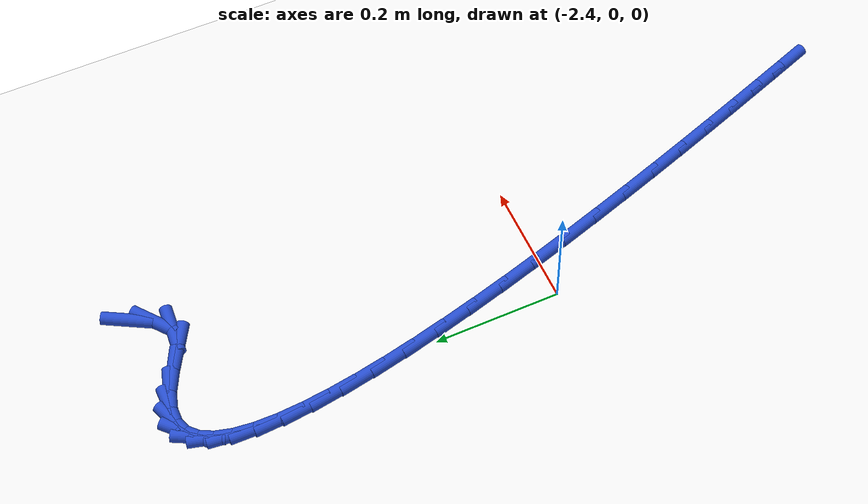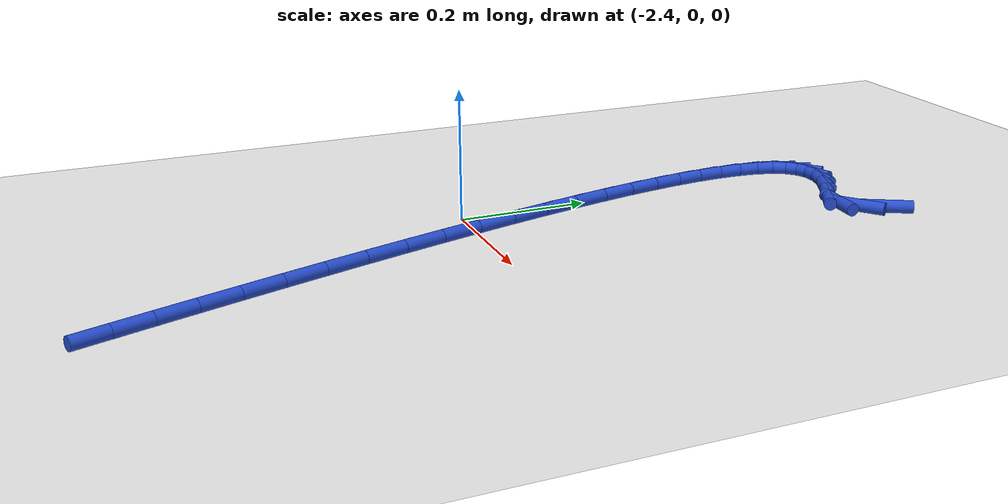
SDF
<sdf version="1.6">
 <world name="default">
  <model name="ground_plane">
   <static>1</static>
   <link name="link">
    <collision name="collision">
     <geometry><plane><normal>0 0 1</normal><size>100 100</size></plane></geometry>
     <surface><friction><ode><mu>100</mu><mu2>50</mu2></ode></friction></surface>
    </collision>
    <visual name="visual">
     <cast_shadows>0</cast_shadows>
     <geometry><plane><normal>0 0 1</normal><size>100 100</size></plane></geometry>
     <material>
      <script><uri>file://media/materials/scripts/gazebo.material</uri><name>Gazebo/WhiteGlow</name></script>
     </material>
    </visual>
   </link>
  </model>
  <model name="line">
   <link name="link_79">
    <pose>-2.176006348635419 0.6055147744611202 0.01 0 1.57 1.055444475067602</pose>
    <collision name="collision">
     <geometry><cylinder><radius>0.01</radius><length>0.08</length></cylinder></geometry>
    </collision>
    <visual name="visual">
     <material>
      <script><name>Gazebo/Blue</name><uri>file://media/materials/scripts/gazebo.material</uri></script>
     </material>
     <geometry><cylinder><radius>0.01</radius><length>0.08</length></cylinder></geometry>
    </visual>
   </link>
   <link name="link_80">
    <pose>-2.196094182939382 0.570049355474075 0.01 0 1.57 0.6645884004642433</pose>
    <collision name="collision">
     <geometry><cylinder><radius>0.01</radius><length>0.08</length></cylinder></geometry>
    </collision>
    <visual name="visual">
     <material>
      <script><name>Gazebo/Blue</name><uri>file://media/materials/scripts/gazebo.material</uri></script>
     </material>
     <geometry><cylinder><radius>0.01</radius><length>0.08</length></cylinder></geometry>
    </visual>
   </link>
   <link name="link_81">
    <pose>-2.2207490291085956 0.5507326924674331 0.01 0 1.57 -0.06457929460538185</pose>
    <collision name="collision">
     <geometry><cylinder><radius>0.01</radius><length>0.08</length></cylinder></geometry>
    </collision>
    <visual name="visual">
     <material>
      <script><name>Gazebo/Blue</name><uri>file://media/materials/scripts/gazebo.material</uri></script>
     </material>
     <geometry><cylinder><radius>0.01</radius><length>0.08</length></cylinder></geometry>
    </visual>
   </link>
   <link name="link_82">
    <pose>-2.251540716907874 0.5527239669087626 0.01 0 1.57 -0.5212176723333364</pose>
    <collision name="collision">
     <geometry><cylinder><radius>0.01</radius><length>0.08</length></cylinder></geometry>
    </collision>
    <visual name="visual">
     <material>
      <script><name>Gazebo/Blue</name><uri>file://media/materials/scripts/gazebo.material</uri></script>
     </material>
     <geometry><cylinder><radius>0.01</radius><length>0.08</length></cylinder></geometry>
    </visual>
   </link>
   <link name="link_83">
    <pose>-2.2872107349214366 0.5732049713370797 0.01 0 1.57 -0.45755475171365434</pose>
    <collision name="collision">
     <geometry><cylinder><radius>0.01</radius><length>0.08</length></cylinder></geometry>
    </collision>
    <visual name="visual">
     <material>
      <script><name>Gazebo/Blue</name><uri>file://media/materials/scripts/gazebo.material</uri></script>
     </material>
     <geometry><cylinder><radius>0.01</radius><length>0.08</length></cylinder></geometry>
    </visual>
   </link>
   <link name="link_84">
    <pose>-2.3193869982682496 0.5890487875511012 0.01 0 1.57 -0.2726657144193193</pose>
    <collision name="collision">
     <geometry><cylinder><radius>0.01</radius><length>0.08</length></cylinder></geometry>
    </collision>
    <visual name="visual">
     <material>
      <script><name>Gazebo/Blue</name><uri>file://media/materials/scripts/gazebo.material</uri></script>
     </material>
     <geometry><cylinder><radius>0.01</radius><length>0.08</length></cylinder></geometry>
    </visual>
   </link>
   <link name="link_85">
    <pose>-2.346854416713557 0.5967295060703051 0.01 0 1.57 0.0012909783658579485</pose>
    <collision name="collision">
     <geometry><cylinder><radius>0.01</radius><length>0.08</length></cylinder></geometry>
    </collision>
    <visual name="visual">
     <material>
      <script><name>Gazebo/Blue</name><uri>file://media/materials/scripts/gazebo.material</uri></script>
     </material>
     <geometry><cylinder><radius>0.01</radius><length>0.08</length></cylinder></geometry>
    </visual>
   </link>
   <link name="link_86">
    <pose>-2.369838490430835 0.5966998341118928 0.01 0 1.57 0.3711200791959185</pose>
    <collision name="collision">
     <geometry><cylinder><radius>0.01</radius><length>0.08</length></cylinder></geometry>
    </collision>
    <visual name="visual">
     <material>
      <script><name>Gazebo/Blue</name><uri>file://media/materials/scripts/gazebo.material</uri></script>
     </material>
     <geometry><cylinder><radius>0.01</radius><length>0.08</length></cylinder></geometry>
    </visual>
   </link>
   <link name="link_87">
    <pose>-2.3885647195935666 0.5894124788930666 0.01 0 1.57 0.7645039278968464</pose>
    <collision name="collision">
     <geometry><cylinder><radius>0.01</radius><length>0.08</length></cylinder></geometry>
    </collision>
    <visual name="visual">
     <material>
      <script><name>Gazebo/Blue</name><uri>file://media/materials/scripts/gazebo.material</uri></script>
     </material>
     <geometry><cylinder><radius>0.01</radius><length>0.08</length></cylinder></geometry>
    </visual>
   </link>
   <link name="link_88">
    <pose>-2.40325860437523 0.5753201476310278 0.01 0 1.57 1.0814769237981379</pose>
    <collision name="collision">
     <geometry><cylinder><radius>0.01</radius><length>0.08</length></cylinder></geometry>
    </collision>
    <visual name="visual">
     <material>
      <script><name>Gazebo/Blue</name><uri>file://media/materials/scripts/gazebo.material</uri></script>
     </material>
     <geometry><cylinder><radius>0.01</radius><length>0.08</length></cylinder></geometry>
    </visual>
   </link>
   <link name="link_89">
    <pose>-2.4141456449493055 0.5548755475429784 0.01 0 1.57 1.3002768521249777</pose>
    <collision name="collision">
     <geometry><cylinder><radius>0.01</radius><length>0.08</length></cylinder></geometry>
    </collision>
    <visual name="visual">
     <material>
      <script><name>Gazebo/Blue</name><uri>file://media/materials/scripts/gazebo.material</uri></script>
     </material>
     <geometry><cylinder><radius>0.01</radius><length>0.08</length></cylinder></geometry>
    </visual>
   </link>
   <link name="link_90">
    <pose>-2.4214513414892718 0.5285313858461207 0.01 0 1.57 1.4471854708589897</pose>
    <collision name="collision">
     <geometry><cylinder><radius>0.01</radius><length>0.08</length></cylinder></geometry>
    </collision>
    <visual name="visual">
     <material>
      <script><name>Gazebo/Blue</name><uri>file://media/materials/scripts/gazebo.material</uri></script>
     </material>
     <geometry><cylinder><radius>0.01</radius><length>0.08</length></cylinder></geometry>
    </visual>
   </link>
   <link name="link_91">
    <pose>-2.42540119416861 0.49674036975765573 0.01 0 1.57 1.5485217633511086</pose>
    <collision name="collision">
     <geometry><cylinder><radius>0.01</radius><length>0.08</length></cylinder></geometry>
    </collision>
    <visual name="visual">
     <material>
      <script><name>Gazebo/Blue</name><uri>file://media/materials/scripts/gazebo.material</uri></script>
     </material>
     <geometry><cylinder><radius>0.01</radius><length>0.08</length></cylinder></geometry>
    </visual>
   </link>
   <link name="link_92">
    <pose>-2.4262207031607983 0.4599552064947855 0.01 0 1.57 -1.5203792306119441</pose>
    <collision name="collision">
     <geometry><cylinder><radius>0.01</radius><length>0.08</length></cylinder></geometry>
    </collision>
    <visual name="visual">
     <material>
      <script><name>Gazebo/Blue</name><uri>file://media/materials/scripts/gazebo.material</uri></script>
     </material>
     <geometry><cylinder><radius>0.01</radius><length>0.08</length></cylinder></geometry>
    </visual>
   </link>
   <link name="link_93">
    <pose>-2.4241353686393174 0.41862860327471263 0.01 0 1.57 -1.4662653135142485</pose>
    <collision name="collision">
     <geometry><cylinder><radius>0.01</radius><length>0.08</length></cylinder></geometry>
    </collision>
    <visual name="visual">
     <material>
      <script><name>Gazebo/Blue</name><uri>file://media/materials/scripts/gazebo.material</uri></script>
     </material>
     <geometry><cylinder><radius>0.01</radius><length>0.08</length></cylinder></geometry>
    </visual>
   </link>
   <link name="link_94">
    <pose>-2.419370690777646 0.3732132673146377 0.01 0 1.57 -1.4246825879222087</pose>
    <collision name="collision">
     <geometry><cylinder><radius>0.01</radius><length>0.08</length></cylinder></geometry>
    </collision>
    <visual name="visual">
     <material>
      <script><name>Gazebo/Blue</name><uri>file://media/materials/scripts/gazebo.material</uri></script>
     </material>
     <geometry><cylinder><radius>0.01</radius><length>0.08</length></cylinder></geometry>
    </visual>
   </link>
   <link name="link_95">
    <pose>-2.412152169749265 0.324161905831763 0.01 0 1.57 -1.3918760676383977</pose>
    <collision name="collision">
     <geometry><cylinder><radius>0.01</radius><length>0.08</length></cylinder></geometry>
    </collision>
    <visual name="visual">
     <material>
      <script><name>Gazebo/Blue</name><uri>file://media/materials/scripts/gazebo.material</uri></script>
     </material>
     <geometry><cylinder><radius>0.01</radius><length>0.08</length></cylinder></geometry>
    </visual>
   </link>
   <link name="link_96">
    <pose>-2.402705305727653 0.27192722604329045 0.01 0 1.57 -1.3654252690597473</pose>
    <collision name="collision">
     <geometry><cylinder><radius>0.01</radius><length>0.08</length></cylinder></geometry>
    </collision>
    <visual name="visual">
     <material>
      <script><name>Gazebo/Blue</name><uri>file://media/materials/scripts/gazebo.material</uri></script>
     </material>
     <geometry><cylinder><radius>0.01</radius><length>0.08</length></cylinder></geometry>
    </visual>
   </link>
   <link name="link_97">
    <pose>-2.391255598886291 0.21696193516642182 0.01 0 1.57 -1.3437141832600041</pose>
    <collision name="collision">
     <geometry><cylinder><radius>0.01</radius><length>0.08</length></cylinder></geometry>
    </collision>
    <visual name="visual">
     <material>
      <script><name>Gazebo/Blue</name><uri>file://media/materials/scripts/gazebo.material</uri></script>
     </material>
     <geometry><cylinder><radius>0.01</radius><length>0.08</length></cylinder></geometry>
    </visual>
   </link>
   <link name="link_98">
    <pose>-2.378028549398657 0.15971874041836 0.01 0 1.57 -1.3256297490005275</pose>
    <collision name="collision">
     <geometry><cylinder><radius>0.01</radius><length>0.08</length></cylinder></geometry>
    </collision>
    <visual name="visual">
     <material>
      <script><name>Gazebo/Blue</name><uri>file://media/materials/scripts/gazebo.material</uri></script>
     </material>
     <geometry><cylinder><radius>0.01</radius><length>0.08</length></cylinder></geometry>
    </visual>
   </link>
   <link name="link_99">
    <pose>-2.3632496574382316 0.10065034901630457 0.01 0 1.57 -1.3103844633180357</pose>
    <collision name="collision">
     <geometry><cylinder><radius>0.01</radius><length>0.08</length></cylinder></geometry>
    </collision>
    <visual name="visual">
     <material>
      <script><name>Gazebo/Blue</name><uri>file://media/materials/scripts/gazebo.material</uri></script>
     </material>
     <geometry><cylinder><radius>0.01</radius><length>0.08</length></cylinder></geometry>
    </visual>
   </link>
   <link name="link_100">
    <pose>-2.3471444231784955 0.04020946817745842 0.01 0 1.57 -1.29740848577971</pose>
    <collision name="collision">
     <geometry><cylinder><radius>0.01</radius><length>0.08</length></cylinder></geometry>
    </collision>
    <visual name="visual">
     <material>
      <script><name>Gazebo/Blue</name><uri>file://media/materials/scripts/gazebo.material</uri></script>
     </material>
     <geometry><cylinder><radius>0.01</radius><length>0.08</length></cylinder></geometry>
    </visual>
   </link>
   <link name="link_101">
    <pose>-2.3299383467929253 -0.021151194880976498 0.01 0 1.57 -1.28628199415528</pose>
    <collision name="collision">
     <geometry><cylinder><radius>0.01</radius><length>0.08</length></cylinder></geometry>
    </collision>
    <visual name="visual">
     <material>
      <script><name>Gazebo/Blue</name><uri>file://media/materials/scripts/gazebo.material</uri></script>
     </material>
     <geometry><cylinder><radius>0.01</radius><length>0.08</length></cylinder></geometry>
    </visual>
   </link>
   <link name="link_102">
    <pose>-2.3118569284550032 -0.08297893294179859 0.01 0 1.57 -1.2766916814952793</pose>
    <collision name="collision">
     <geometry><cylinder><radius>0.01</radius><length>0.08</length></cylinder></geometry>
    </collision>
    <visual name="visual">
     <material>
      <script><name>Gazebo/Blue</name><uri>file://media/materials/scripts/gazebo.material</uri></script>
     </material>
     <geometry><cylinder><radius>0.01</radius><length>0.08</length></cylinder></geometry>
    </visual>
   </link>
   <link name="link_103">
    <pose>-2.2931256683382086 -0.14482103878780597 0.01 0 1.57 -1.2684022631766925</pose>
    <collision name="collision">
     <geometry><cylinder><radius>0.01</radius><length>0.08</length></cylinder></geometry>
    </collision>
    <visual name="visual">
     <material>
      <script><name>Gazebo/Blue</name><uri>file://media/materials/scripts/gazebo.material</uri></script>
     </material>
     <geometry><cylinder><radius>0.01</radius><length>0.08</length></cylinder></geometry>
    </visual>
   </link>
   <link name="link_104">
    <pose>-2.2739700666160205 -0.2062248052017967 0.01 0 1.57 -1.2612377043543097</pose>
    <collision name="collision">
     <geometry><cylinder><radius>0.01</radius><length>0.08</length></cylinder></geometry>
    </collision>
    <visual name="visual">
     <material>
      <script><name>Gazebo/Blue</name><uri>file://media/materials/scripts/gazebo.material</uri></script>
     </material>
     <geometry><cylinder><radius>0.01</radius><length>0.08</length></cylinder></geometry>
    </visual>
   </link>
   <link name="link_105">
    <pose>-2.25461562346192 -0.26673752496656794 0.01 0 1.57 -1.2550690926274668</pose>
    <collision name="collision">
     <geometry><cylinder><radius>0.01</radius><length>0.08</length></cylinder></geometry>
    </collision>
    <visual name="visual">
     <material>
      <script><name>Gazebo/Blue</name><uri>file://media/materials/scripts/gazebo.material</uri></script>
     </material>
     <geometry><cylinder><radius>0.01</radius><length>0.08</length></cylinder></geometry>
    </visual>
   </link>
   <link name="link_106">
    <pose>-2.2352878390493847 -0.32590649086492013 0.01 0 1.57 -1.2498074539844395</pose>
    <collision name="collision">
     <geometry><cylinder><radius>0.01</radius><length>0.08</length></cylinder></geometry>
    </collision>
    <visual name="visual">
     <material>
      <script><name>Gazebo/Blue</name><uri>file://media/materials/scripts/gazebo.material</uri></script>
     </material>
     <geometry><cylinder><radius>0.01</radius><length>0.08</length></cylinder></geometry>
    </visual>
   </link>
   <link name="link_107">
    <pose>-2.216212213551895 -0.3832789956796504 0.01 0 1.57 -1.2454007915811116</pose>
    <collision name="collision">
     <geometry><cylinder><radius>0.01</radius><length>0.08</length></cylinder></geometry>
    </collision>
    <visual name="visual">
     <material>
      <script><name>Gazebo/Blue</name><uri>file://media/materials/scripts/gazebo.material</uri></script>
     </material>
     <geometry><cylinder><radius>0.01</radius><length>0.08</length></cylinder></geometry>
    </visual>
   </link>
   <link name="link_108">
    <pose>-2.197614247142931 -0.438402332193557 0.01 0 1.57 -1.241835539478623</pose>
    <collision name="collision">
     <geometry><cylinder><radius>0.01</radius><length>0.08</length></cylinder></geometry>
    </collision>
    <visual name="visual">
     <material>
      <script><name>Gazebo/Blue</name><uri>file://media/materials/scripts/gazebo.material</uri></script>
     </material>
     <geometry><cylinder><radius>0.01</radius><length>0.08</length></cylinder></geometry>
    </visual>
   </link>
   <link name="link_109">
    <pose>-2.1797194399959725 -0.49082379318943803 0.01 0 1.57 -1.2391438278159606</pose>
    <collision name="collision">
     <geometry><cylinder><radius>0.01</radius><length>0.08</length></cylinder></geometry>
    </collision>
    <visual name="visual">
     <material>
      <script><name>Gazebo/Blue</name><uri>file://media/materials/scripts/gazebo.material</uri></script>
     </material>
     <geometry><cylinder><radius>0.01</radius><length>0.08</length></cylinder></geometry>
    </visual>
   </link>
   <link name="link_110">
    <pose>-2.1627532922844988 -0.5400906714500915 0.01 0 1.57 -1.2365912204376235</pose>
    <collision name="collision">
     <geometry><cylinder><radius>0.01</radius><length>0.08</length></cylinder></geometry>
    </collision>
    <visual name="visual">
     <material>
      <script><name>Gazebo/Blue</name><uri>file://media/materials/scripts/gazebo.material</uri></script>
     </material>
     <geometry><cylinder><radius>0.01</radius><length>0.08</length></cylinder></geometry>
    </visual>
   </link>
  </model>
 </world>
</sdf>
